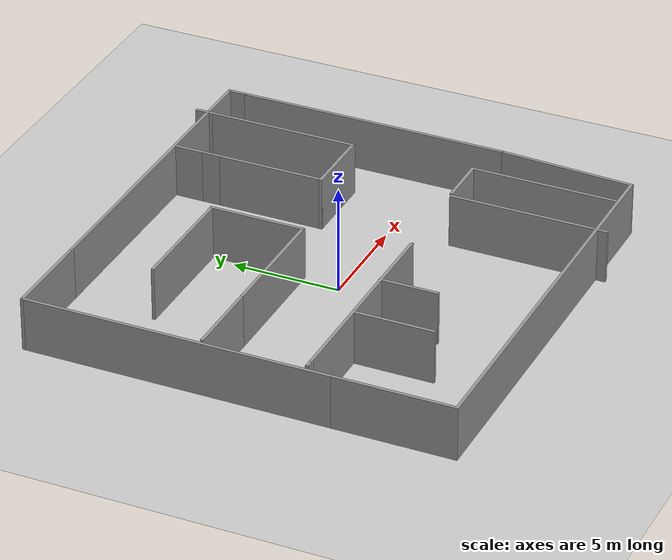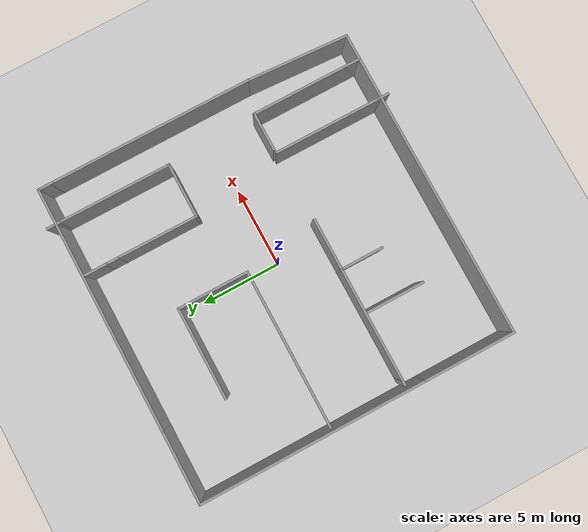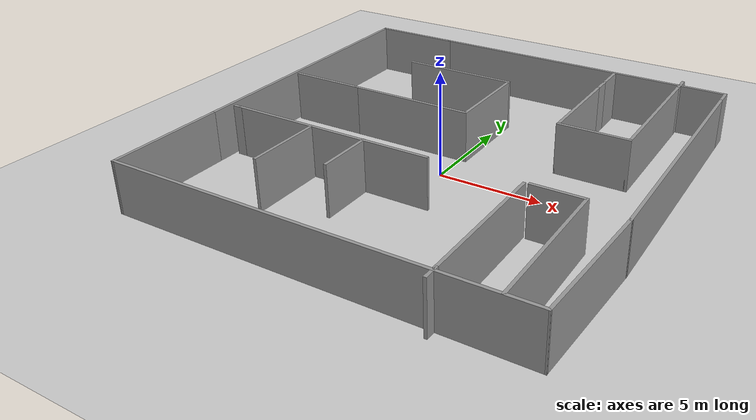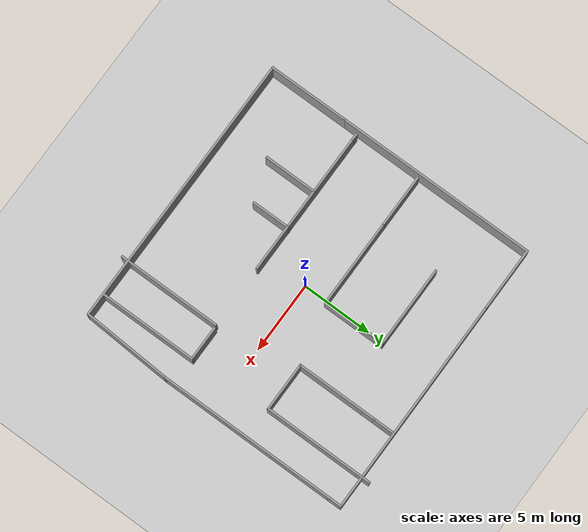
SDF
<sdf version="1.6">
 <world name="default">
  <model name="ground_plane">
   <static>1</static>
   <link name="link">
    <collision name="collision">
     <geometry><plane><normal>0 0 1</normal><size>100 100</size></plane></geometry>
     <surface><friction><ode><mu>100</mu><mu2>50</mu2></ode></friction></surface>
    </collision>
    <visual name="visual">
     <cast_shadows>0</cast_shadows>
     <geometry><plane><normal>0 0 1</normal><size>100 100</size></plane></geometry>
     <material>
      <script><uri>file://media/materials/scripts/gazebo.material</uri><name>Gazebo/Grey</name></script>
     </material>
    </visual>
   </link>
  </model>
  <light name="sun" type="directional">
   <pose>0 0 10 0 -0 0</pose>
   <diffuse>0.8 0.8 0.8 1</diffuse>
   <specular>0.1 0.1 0.1 1</specular>
   <attenuation>
    <range>1000</range>
    <constant>0.9</constant>
    <linear>0.01</linear>
    <quadratic>0.001</quadratic>
   </attenuation>
   <direction>-0.5 0.5 -1</direction>
  </light>
  <gravity>0 0 -9.8</gravity>
  <magnetic_field>6e-06 2.3e-05 -4.2e-05</magnetic_field>
  <atmosphere type="adiabatic"/>
  <physics name="default_physics" default="0" type="ode">
   <max_step_size>0.001</max_step_size>
   <real_time_factor>1</real_time_factor>
   <real_time_update_rate>1000</real_time_update_rate>
  </physics>
  <scene><ambient>0.4 0.4 0.4 1</ambient><background>0.7 0.7 0.7 1</background><shadows>1</shadows></scene>
  <spherical_coordinates>
   <surface_model>EARTH_WGS84</surface_model>
   <latitude_deg>0</latitude_deg>
   <longitude_deg>0</longitude_deg>
   <elevation>0</elevation>
   <heading_deg>0</heading_deg>
  </spherical_coordinates>
  <model name="second_test">
   <pose>0.127206 0.185219 0 0 -0 0</pose>
   <link name="Wall_22">
    <collision name="Wall_22_Collision">
     <geometry><box><size>12.75 0.15 2.5</size></box></geometry>
     <pose>0 0 1.25 0 -0 0</pose>
    </collision>
    <visual name="Wall_22_Visual">
     <pose>0 0 1.25 0 -0 0</pose>
     <geometry><box><size>12.75 0.15 2.5</size></box></geometry>
     <material>
      <script><uri>file://media/materials/scripts/gazebo.material</uri><name>Gazebo/Grey</name></script>
      <ambient>1 1 1 1</ambient>
     </material>
    </visual>
    <pose>9.84796 2.70204 0 0 -0 1.5708</pose>
   </link>
   <link name="Wall_25">
    <collision name="Wall_25_Collision">
     <geometry><box><size>1 0.15 2.5</size></box></geometry>
     <pose>0 0 1.25 0 -0 0</pose>
    </collision>
    <visual name="Wall_25_Visual">
     <pose>0 0 1.25 0 -0 0</pose>
     <geometry><box><size>1 0.15 2.5</size></box></geometry>
     <material>
      <script><uri>file://media/materials/scripts/gazebo.material</uri><name>Gazebo/Grey</name></script>
      <ambient>1 1 1 1</ambient>
     </material>
    </visual>
    <pose>9.84796 9.42704 0 0 -0 1.5708</pose>
   </link>
   <link name="Wall_26">
    <collision name="Wall_26_Collision">
     <geometry><box><size>15.5 0.15 2.5</size></box></geometry>
     <pose>0 0 1.25 0 -0 0</pose>
    </collision>
    <visual name="Wall_26_Visual">
     <pose>0 0 1.25 0 -0 0</pose>
     <geometry><box><size>15.5 0.15 2.5</size></box></geometry>
     <material>
      <script><uri>file://media/materials/scripts/gazebo.material</uri><name>Gazebo/Grey</name></script>
      <ambient>1 1 1 1</ambient>
     </material>
    </visual>
    <pose>2.17296 9.85204 0 0 -0 3.14159</pose>
   </link>
   <link name="Wall_29">
    <collision name="Wall_29_Collision">
     <geometry><box><size>4.5 0.15 2.5</size></box></geometry>
     <pose>0 0 1.25 0 -0 0</pose>
    </collision>
    <visual name="Wall_29_Visual">
     <pose>0 0 1.25 0 -0 0</pose>
     <geometry><box><size>4.5 0.15 2.5</size></box></geometry>
     <material>
      <script><uri>file://media/materials/scripts/gazebo.material</uri><name>Gazebo/Grey</name></script>
      <ambient>1 1 1 1</ambient>
     </material>
    </visual>
    <pose>-7.67704 9.85204 0 0 -0 3.14159</pose>
   </link>
   <link name="Wall_30">
    <collision name="Wall_30_Collision">
     <geometry><box><size>14.25 0.15 2.5</size></box></geometry>
     <pose>0 0 1.25 0 -0 0</pose>
    </collision>
    <visual name="Wall_30_Visual">
     <pose>0 0 1.25 0 -0 0</pose>
     <geometry><box><size>14.25 0.15 2.5</size></box></geometry>
     <material>
      <script><uri>file://media/materials/scripts/gazebo.material</uri><name>Gazebo/Grey</name></script>
      <ambient>1 1 1 1</ambient>
     </material>
    </visual>
    <pose>-9.85204 2.80204 0 0 0 -1.5708</pose>
   </link>
   <link name="Wall_32">
    <collision name="Wall_32_Collision">
     <geometry><box><size>5.75 0.15 2.5</size></box></geometry>
     <pose>0 0 1.25 0 -0 0</pose>
    </collision>
    <visual name="Wall_32_Visual">
     <pose>0 0 1.25 0 -0 0</pose>
     <geometry><box><size>5.75 0.15 2.5</size></box></geometry>
     <material>
      <script><uri>file://media/materials/scripts/gazebo.material</uri><name>Gazebo/Grey</name></script>
      <ambient>1 1 1 1</ambient>
     </material>
    </visual>
    <pose>-9.85204 -7.04796 0 0 0 -1.5708</pose>
   </link>
   <link name="Wall_33">
    <collision name="Wall_33_Collision">
     <geometry><box><size>19.5 0.15 2.5</size></box></geometry>
     <pose>0 0 1.25 0 -0 0</pose>
    </collision>
    <visual name="Wall_33_Visual">
     <pose>0 0 1.25 0 -0 0</pose>
     <geometry><box><size>19.5 0.15 2.5</size></box></geometry>
     <material>
      <script><uri>file://media/materials/scripts/gazebo.material</uri><name>Gazebo/Grey</name></script>
      <ambient>1 1 1 1</ambient>
     </material>
    </visual>
    <pose>-0.177038 -9.84796 0 0 -0 0</pose>
   </link>
   <link name="Wall_35">
    <collision name="Wall_35_Collision">
     <geometry><box><size>6.40979 0.15 2.5</size></box></geometry>
     <pose>0 0 1.25 0 -0 0</pose>
    </collision>
    <visual name="Wall_35_Visual">
     <pose>0 0 1.25 0 -0 0</pose>
     <geometry><box><size>6.40979 0.15 2.5</size></box></geometry>
     <material>
      <script><uri>file://media/materials/scripts/gazebo.material</uri><name>Gazebo/Grey</name></script>
      <ambient>1 1 1 1</ambient>
     </material>
    </visual>
    <pose>9.67296 -6.72296 0 0 -0 1.51486</pose>
   </link>
   <static>1</static>
  </model>
  <model name="baskin_test_world2">
   <pose>-0.685622 0.233796 0 0 -0 0</pose>
   <link name="Wall_1">
    <collision name="Wall_1_Collision">
     <geometry><box><size>10.25 0.15 2.5</size></box></geometry>
     <pose>0 0 1.25 0 -0 0</pose>
    </collision>
    <visual name="Wall_1_Visual">
     <pose>0 0 1.25 0 -0 0</pose>
     <geometry><box><size>10.25 0.15 2.5</size></box></geometry>
     <material>
      <script><uri>file://media/materials/scripts/gazebo.material</uri><name>Gazebo/Grey</name></script>
      <ambient>1 1 1 1</ambient>
     </material>
    </visual>
    <pose>-3.29418 -3.15109 0 0 -0 3.14159</pose>
   </link>
   <link name="Wall_11">
    <collision name="Wall_11_Collision">
     <geometry><box><size>2.75 0.15 2.5</size></box></geometry>
     <pose>0 0 1.25 0 -0 0</pose>
    </collision>
    <visual name="Wall_11_Visual">
     <pose>0 0 1.25 0 -0 0</pose>
     <geometry><box><size>2.75 0.15 2.5</size></box></geometry>
     <material>
      <script><uri>file://media/materials/scripts/gazebo.material</uri><name>Gazebo/Grey</name></script>
      <ambient>1 1 1 1</ambient>
     </material>
    </visual>
    <pose>-1.42731 -4.43755 0 0 0 -1.5708</pose>
   </link>
   <link name="Wall_13">
    <collision name="Wall_13_Collision">
     <geometry><box><size>3.75 0.15 2.5</size></box></geometry>
     <pose>0 0 1.25 0 -0 0</pose>
    </collision>
    <visual name="Wall_13_Visual">
     <pose>0 0 1.25 0 -0 0</pose>
     <geometry><box><size>3.75 0.15 2.5</size></box></geometry>
     <material>
      <script><uri>file://media/materials/scripts/gazebo.material</uri><name>Gazebo/Grey</name></script>
      <ambient>1 1 1 1</ambient>
     </material>
    </visual>
    <pose>-6.94849 1.57662 0 0 -0 3.14159</pose>
   </link>
   <link name="Wall_15">
    <collision name="Wall_15_Collision">
     <geometry><box><size>6.25 0.15 2.5</size></box></geometry>
     <pose>0 0 1.25 0 -0 0</pose>
    </collision>
    <visual name="Wall_15_Visual">
     <pose>0 0 1.25 0 -0 0</pose>
     <geometry><box><size>6.25 0.15 2.5</size></box></geometry>
     <material>
      <script><uri>file://media/materials/scripts/gazebo.material</uri><name>Gazebo/Grey</name></script>
      <ambient>1 1 1 1</ambient>
     </material>
    </visual>
    <pose>-2.09849 1.57662 0 0 -0 0</pose>
   </link>
   <link name="Wall_16">
    <collision name="Wall_16_Collision">
     <geometry><box><size>4.5 0.15 2.5</size></box></geometry>
     <pose>0 0 1.25 0 -0 0</pose>
    </collision>
    <visual name="Wall_16_Visual">
     <pose>0 0 1.25 0 -0 0</pose>
     <geometry><box><size>4.5 0.15 2.5</size></box></geometry>
     <material>
      <script><uri>file://media/materials/scripts/gazebo.material</uri><name>Gazebo/Grey</name></script>
      <ambient>1 1 1 1</ambient>
     </material>
    </visual>
    <pose>0.951513 3.75163 0 0 -0 1.5708</pose>
   </link>
   <link name="Wall_17">
    <collision name="Wall_17_Collision">
     <geometry><box><size>5.75 0.15 2.5</size></box></geometry>
     <pose>0 0 1.25 0 -0 0</pose>
    </collision>
    <visual name="Wall_17_Visual">
     <pose>0 0 1.25 0 -0 0</pose>
     <geometry><box><size>5.75 0.15 2.5</size></box></geometry>
     <material>
      <script><uri>file://media/materials/scripts/gazebo.material</uri><name>Gazebo/Grey</name></script>
      <ambient>1 1 1 1</ambient>
     </material>
    </visual>
    <pose>-1.84849 5.92662 0 0 -0 3.14159</pose>
   </link>
   <link name="Wall_23">
    <collision name="Wall_23_Collision">
     <geometry><box><size>5 0.15 2.5</size></box></geometry>
     <pose>0 0 1.25 0 -0 0</pose>
    </collision>
    <visual name="Wall_23_Visual">
     <pose>0 0 1.25 0 -0 0</pose>
     <geometry><box><size>5 0.15 2.5</size></box></geometry>
     <material>
      <script><uri>file://media/materials/scripts/gazebo.material</uri><name>Gazebo/Grey</name></script>
      <ambient>1 1 1 1</ambient>
     </material>
    </visual>
    <pose>5.08853 5.05699 0 0 -0 1.5708</pose>
   </link>
   <link name="Wall_24">
    <collision name="Wall_24_Collision">
     <geometry><box><size>1 0.15 2.5</size></box></geometry>
     <pose>0 0 1.25 0 -0 0</pose>
    </collision>
    <visual name="Wall_24_Visual">
     <pose>0 0 1.25 0 -0 0</pose>
     <geometry><box><size>1 0.15 2.5</size></box></geometry>
     <material>
      <script><uri>file://media/materials/scripts/gazebo.material</uri><name>Gazebo/Grey</name></script>
      <ambient>1 1 1 1</ambient>
     </material>
    </visual>
    <pose>5.08853 7.90699 0 0 -0 1.5708</pose>
   </link>
   <link name="Wall_26">
    <collision name="Wall_26_Collision">
     <geometry><box><size>1.5 0.15 2.5</size></box></geometry>
     <pose>0 0 1.25 0 -0 0</pose>
    </collision>
    <visual name="Wall_26_Visual">
     <pose>0 0 1.25 0 -0 0</pose>
     <geometry><box><size>1.5 0.15 2.5</size></box></geometry>
     <material>
      <script><uri>file://media/materials/scripts/gazebo.material</uri><name>Gazebo/Grey</name></script>
      <ambient>1 1 1 1</ambient>
     </material>
    </visual>
    <pose>5.08853 9.00699 0 0 -0 1.5708</pose>
   </link>
   <link name="Wall_28">
    <collision name="Wall_28_Collision">
     <geometry><box><size>3.5 0.15 2.5</size></box></geometry>
     <pose>0 0 1.25 0 -0 0</pose>
    </collision>
    <visual name="Wall_28_Visual">
     <pose>0 0 1.25 0 -0 0</pose>
     <geometry><box><size>3.5 0.15 2.5</size></box></geometry>
     <material>
      <script><uri>file://media/materials/scripts/gazebo.material</uri><name>Gazebo/Grey</name></script>
      <ambient>1 1 1 1</ambient>
     </material>
    </visual>
    <pose>6.76353 2.63199 0 0 -0 0</pose>
   </link>
   <link name="Wall_29">
    <collision name="Wall_29_Collision">
     <geometry><box><size>7 0.15 2.5</size></box></geometry>
     <pose>0 0 1.25 0 -0 0</pose>
    </collision>
    <visual name="Wall_29_Visual">
     <pose>0 0 1.25 0 -0 0</pose>
     <geometry><box><size>7 0.15 2.5</size></box></geometry>
     <material>
      <script><uri>file://media/materials/scripts/gazebo.material</uri><name>Gazebo/Grey</name></script>
      <ambient>1 1 1 1</ambient>
     </material>
    </visual>
    <pose>8.43853 6.05699 0 0 -0 1.5708</pose>
   </link>
   <link name="Wall_31">
    <collision name="Wall_31_Collision">
     <geometry><box><size>1 0.15 2.5</size></box></geometry>
     <pose>0 0 1.25 0 -0 0</pose>
    </collision>
    <visual name="Wall_31_Visual">
     <pose>0 0 1.25 0 -0 0</pose>
     <geometry><box><size>1 0.15 2.5</size></box></geometry>
     <material>
      <script><uri>file://media/materials/scripts/gazebo.material</uri><name>Gazebo/Grey</name></script>
      <ambient>1 1 1 1</ambient>
     </material>
    </visual>
    <pose>8.43853 9.90699 0 0 -0 1.5708</pose>
   </link>
   <link name="Wall_35">
    <collision name="Wall_35_Collision">
     <geometry><box><size>6.75 0.15 2.5</size></box></geometry>
     <pose>0 0 1.25 0 -0 0</pose>
    </collision>
    <visual name="Wall_35_Visual">
     <pose>0 0 1.25 0 -0 0</pose>
     <geometry><box><size>6.75 0.15 2.5</size></box></geometry>
     <material>
      <script><uri>file://media/materials/scripts/gazebo.material</uri><name>Gazebo/Grey</name></script>
      <ambient>1 1 1 1</ambient>
     </material>
    </visual>
    <pose>6.16587 -6.43199 0 0 0 -1.5708</pose>
   </link>
   <link name="Wall_36">
    <collision name="Wall_36_Collision">
     <geometry><box><size>0.75 0.15 2.5</size></box></geometry>
     <pose>0 0 1.25 0 -0 0</pose>
    </collision>
    <visual name="Wall_36_Visual">
     <pose>0 0 1.25 0 -0 0</pose>
     <geometry><box><size>0.75 0.15 2.5</size></box></geometry>
     <material>
      <script><uri>file://media/materials/scripts/gazebo.material</uri><name>Gazebo/Grey</name></script>
      <ambient>1 1 1 1</ambient>
     </material>
    </visual>
    <pose>6.16587 -10.032 0 0 0 -1.5708</pose>
   </link>
   <link name="Wall_38">
    <collision name="Wall_38_Collision">
     <geometry><box><size>2.5 0.15 2.5</size></box></geometry>
     <pose>0 0 1.25 0 -0 0</pose>
    </collision>
    <visual name="Wall_38_Visual">
     <pose>0 0 1.25 0 -0 0</pose>
     <geometry><box><size>2.5 0.15 2.5</size></box></geometry>
     <material>
      <script><uri>file://media/materials/scripts/gazebo.material</uri><name>Gazebo/Grey</name></script>
      <ambient>1 1 1 1</ambient>
     </material>
    </visual>
    <pose>7.57349 -3.03894 0 0 -0 0</pose>
   </link>
   <link name="Wall_39">
    <collision name="Wall_39_Collision">
     <geometry><box><size>7 0.15 2.5</size></box></geometry>
     <pose>0 0 1.25 0 -0 0</pose>
    </collision>
    <visual name="Wall_39_Visual">
     <pose>0 0 1.25 0 -0 0</pose>
     <geometry><box><size>7 0.15 2.5</size></box></geometry>
     <material>
      <script><uri>file://media/materials/scripts/gazebo.material</uri><name>Gazebo/Grey</name></script>
      <ambient>1 1 1 1</ambient>
     </material>
    </visual>
    <pose>8.74849 -6.46394 0 0 0 -1.5708</pose>
   </link>
   <link name="Wall_5">
    <collision name="Wall_5_Collision">
     <geometry><box><size>3.75 0.15 2.5</size></box></geometry>
     <pose>0 0 1.25 0 -0 0</pose>
    </collision>
    <visual name="Wall_5_Visual">
     <pose>0 0 1.25 0 -0 0</pose>
     <geometry><box><size>3.75 0.15 2.5</size></box></geometry>
     <material>
      <script><uri>file://media/materials/scripts/gazebo.material</uri><name>Gazebo/Grey</name></script>
      <ambient>1 1 1 1</ambient>
     </material>
    </visual>
    <pose>-4.21949 -4.99303 0 0 0 -1.5708</pose>
   </link>
   <link name="Wall_9">
    <collision name="Wall_9_Collision">
     <geometry><box><size>0.5 0.15 2.5</size></box></geometry>
     <pose>0 0 1.25 0 -0 0</pose>
    </collision>
    <visual name="Wall_9_Visual">
     <pose>0 0 1.25 0 -0 0</pose>
     <geometry><box><size>0.5 0.15 2.5</size></box></geometry>
     <material>
      <script><uri>file://media/materials/scripts/gazebo.material</uri><name>Gazebo/Grey</name></script>
      <ambient>1 1 1 1</ambient>
     </material>
    </visual>
    <pose>-8.51918 -3.15109 0 0 -0 3.14159</pose>
   </link>
   <static>1</static>
  </model>
 </world>
</sdf>
